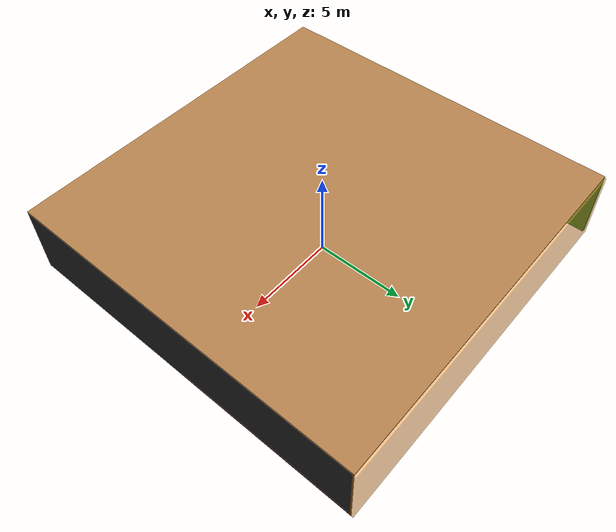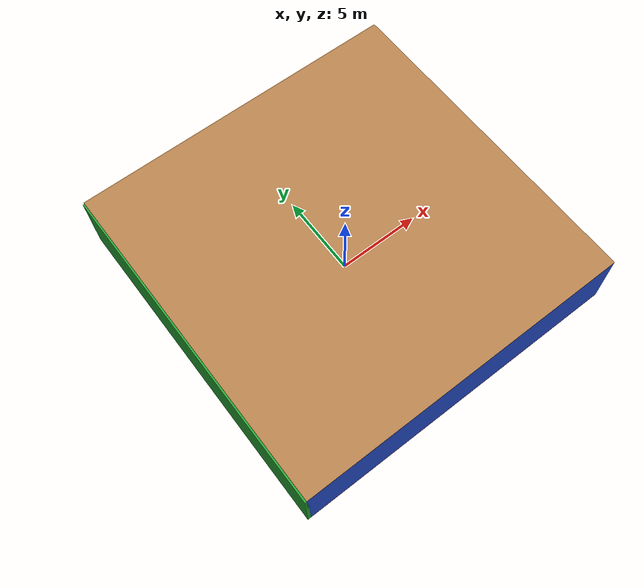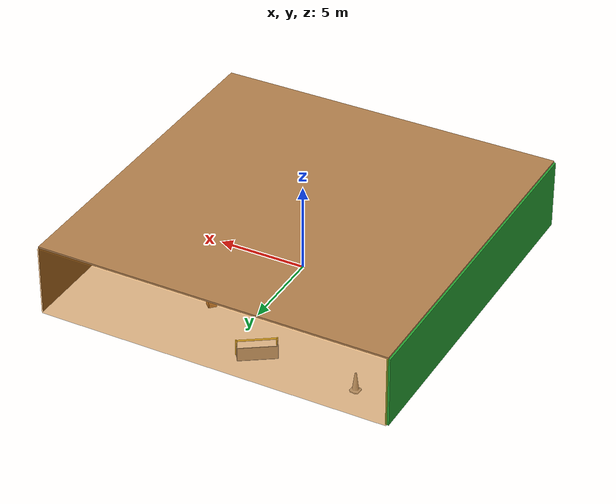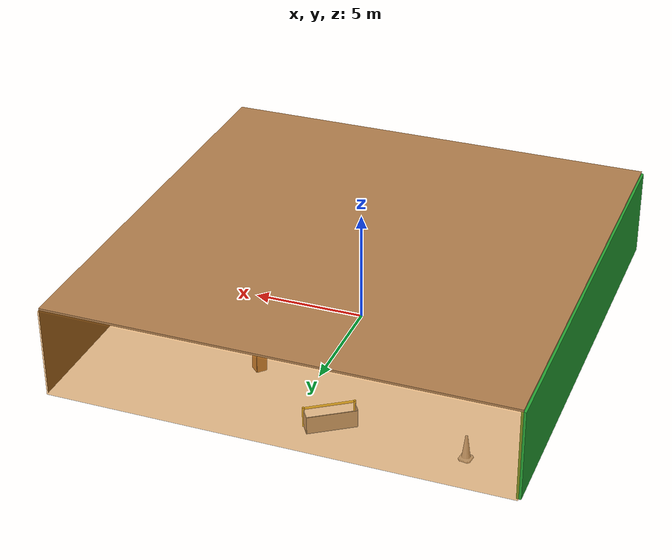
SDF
<sdf version="1.4">
 <world name="default">
  <physics type="ode">
   <max_step_size>0.001</max_step_size>
   <real_time_factor>1</real_time_factor>
   <real_time_update_rate>1000</real_time_update_rate>
   <gravity>0 0 -9.8</gravity>
  </physics>
  <scene><ambient>0.4 0.4 0.4 1</ambient><background>0.7 0.7 0.7 1</background><shadows>1</shadows></scene>
  <model name="Surrounding">
   <static>1</static>
   <link name="Ceiling">
    <collision name="Ceiling_Collision"><geometry><box><size>20 20 0.1</size></box></geometry></collision>
    <visual name="Ceiling_Visual">
     <geometry><box><size>20 20 0.1</size></box></geometry>
     <material>
      <script><uri>file://media/materials/scripts/gazebo.material</uri><name>Gazebo/WoodPallet</name></script>
     </material>
    </visual>
    <pose>0 0 4.05 0 0 0</pose>
   </link>
   <link name="Wall_South">
    <collision name="Wall_South_Collision">
     <geometry><box><size>20 0 4</size></box></geometry>
     <pose>0 0 2 0 -0 0</pose>
    </collision>
    <visual name="Wall_South_Visual">
     <pose>0 0 2 0 -0 0</pose>
     <geometry><box><size>20 0 4</size></box></geometry>
     <material>
      <script><uri>file://media/materials/scripts/gazebo.material</uri><name>Gazebo/Blue</name></script>
     </material>
    </visual>
    <velocity_decay><linear>0</linear><angular>0</angular></velocity_decay>
    <pose>0 -10 0 0 -0 0</pose>
   </link>
   <link name="Wall_East">
    <collision name="Wall_21_Collision">
     <geometry><box><size>20 0 4</size></box></geometry>
     <pose>0 0 2 0 -0 0</pose>
    </collision>
    <visual name="Wall_21_Visual">
     <pose>0 0 2 0 -0 0</pose>
     <geometry><box><size>20 0 4</size></box></geometry>
     <material>
      <script><uri>file://media/materials/scripts/gazebo.material</uri><name>Gazebo/Black</name></script>
     </material>
    </visual>
    <velocity_decay><linear>0</linear><angular>0</angular></velocity_decay>
    <pose>10 0 0 0 -0 1.5708</pose>
   </link>
   <link name="Wall_North">
    <collision name="Wall_22_Collision">
     <geometry><box><size>20 0.2 4</size></box></geometry>
     <pose>0 0 2 0 -0 0</pose>
    </collision>
    <visual name="Wall_22_Visual">
     <pose>0 0 2 0 -0 0</pose>
     <geometry><box><size>20 0.2 4</size></box></geometry>
     <material>
      <script>
       <uri>file://media/materials/scripts/gazebo.material</uri>
       <name>Gazebo/OrangeTransparent</name>
      </script>
     </material>
    </visual>
    <velocity_decay><linear>0</linear><angular>0</angular></velocity_decay>
    <pose>0 10 0 0 -0 0</pose>
   </link>
   <link name="Wall_West">
    <collision name="Wall_23_Collision">
     <geometry><box><size>20 0.2 4</size></box></geometry>
     <pose>0 0 2 0 -0 0</pose>
    </collision>
    <visual name="Wall_23_Visual">
     <pose>0 0 2 0 -0 0</pose>
     <geometry><box><size>20 0.2 4</size></box></geometry>
     <material>
      <script><uri>file://media/materials/scripts/gazebo.material</uri><name>Gazebo/GreenGlow</name></script>
     </material>
    </visual>
    <velocity_decay><linear>0</linear><angular>0</angular></velocity_decay>
    <pose>-10 0 0 0 0 -1.5708</pose>
   </link>
   <link name="Ground_link">
    <collision name="collision">
     <pose>0 0 .05 0 -0 0</pose>
     <geometry><box><size>20 20 0.1</size></box></geometry>
    </collision>
    <visual name="visual">
     <pose>0 0 .05 0 -0 0</pose>
     <geometry><box><size>20 20 0.1</size></box></geometry>
     <material>
      <script><uri>file://media/materials/scripts/gazebo.material</uri><name>Gazebo/RedTransparent</name></script>
     </material>
    </visual>
   </link>
   <static>1</static>
  </model>
  <spherical_coordinates>
   <surface_model>EARTH_WGS84</surface_model>
   <latitude_deg>0</latitude_deg>
   <longitude_deg>0</longitude_deg>
   <elevation>0</elevation>
   <heading_deg>0</heading_deg>
  </spherical_coordinates>
  <light name="lightball_0" type="diffuse">
   <diffuse>0.8 0.8 0.8 1</diffuse>
   <specular>0.2 0.2 0.2 1</specular>
   <attenuation>
    <range>100</range>
    <constant>0.7</constant>
    <linear>0.01</linear>
    <quadratic>0.001</quadratic>
   </attenuation>
   <direction>-0.5 0.1 -0.9</direction>
   <pose>-7.59857008033 -6.68813748623 1.70246725443 0 0 0</pose>
  </light>
  <light name="lightball_1" type="diffuse">
   <diffuse>0.8 0.8 0.8 1</diffuse>
   <specular>0.2 0.2 0.2 1</specular>
   <attenuation>
    <range>100</range>
    <constant>0.7</constant>
    <linear>0.01</linear>
    <quadratic>0.001</quadratic>
   </attenuation>
   <direction>-0.5 0.1 -0.9</direction>
   <pose>-9.3742381603 7.43391651903 1.06829821059 0 0 0</pose>
  </light>
  <light name="lightball_2" type="diffuse">
   <diffuse>0.8 0.8 0.8 1</diffuse>
   <specular>0.2 0.2 0.2 1</specular>
   <attenuation>
    <range>100</range>
    <constant>0.7</constant>
    <linear>0.01</linear>
    <quadratic>0.001</quadratic>
   </attenuation>
   <direction>-0.5 0.1 -0.9</direction>
   <pose>-4.22537814399 -9.28143282036 1.24354909616 0 0 0</pose>
  </light>
  <light name="lightball_3" type="diffuse">
   <diffuse>0.8 0.8 0.8 1</diffuse>
   <specular>0.2 0.2 0.2 1</specular>
   <attenuation>
    <range>100</range>
    <constant>0.7</constant>
    <linear>0.01</linear>
    <quadratic>0.001</quadratic>
   </attenuation>
   <direction>-0.5 0.1 -0.9</direction>
   <pose>0.187202762754 -2.7918411255 1.79184821581 0 0 0</pose>
  </light>
  <light name="lightball_4" type="diffuse">
   <diffuse>0.8 0.8 0.8 1</diffuse>
   <specular>0.2 0.2 0.2 1</specular>
   <attenuation>
    <range>100</range>
    <constant>0.7</constant>
    <linear>0.01</linear>
    <quadratic>0.001</quadratic>
   </attenuation>
   <direction>-0.5 0.1 -0.9</direction>
   <pose>3.51271221372 3.94642484645 2.99546296499 0 0 0</pose>
  </light>
  <light name="lightball_5" type="diffuse">
   <diffuse>0.8 0.8 0.8 1</diffuse>
   <specular>0.2 0.2 0.2 1</specular>
   <attenuation>
    <range>100</range>
    <constant>0.7</constant>
    <linear>0.01</linear>
    <quadratic>0.001</quadratic>
   </attenuation>
   <direction>-0.5 0.1 -0.9</direction>
   <pose>0.752224172694 -1.7652551748 2.64311174894 0 0 0</pose>
  </light>
  <light name="lightball_6" type="diffuse">
   <diffuse>0.8 0.8 0.8 1</diffuse>
   <specular>0.2 0.2 0.2 1</specular>
   <attenuation>
    <range>100</range>
    <constant>0.7</constant>
    <linear>0.01</linear>
    <quadratic>0.001</quadratic>
   </attenuation>
   <direction>-0.5 0.1 -0.9</direction>
   <pose>-2.70023174103 2.60497003231 2.03898714013 0 0 0</pose>
  </light>
  <light name="lightball_7" type="diffuse">
   <diffuse>0.8 0.8 0.8 1</diffuse>
   <specular>0.2 0.2 0.2 1</specular>
   <attenuation>
    <range>100</range>
    <constant>0.7</constant>
    <linear>0.01</linear>
    <quadratic>0.001</quadratic>
   </attenuation>
   <direction>-0.5 0.1 -0.9</direction>
   <pose>-8.82203290556 -1.33448894034 1.01702255379 0 0 0</pose>
  </light>
  <light name="lightball_8" type="diffuse">
   <diffuse>0.8 0.8 0.8 1</diffuse>
   <specular>0.2 0.2 0.2 1</specular>
   <attenuation>
    <range>100</range>
    <constant>0.7</constant>
    <linear>0.01</linear>
    <quadratic>0.001</quadratic>
   </attenuation>
   <direction>-0.5 0.1 -0.9</direction>
   <pose>3.46548300119 -8.01262585345 1.11718163938 0 0 0</pose>
  </light>
  <light name="lightball_9" type="diffuse">
   <diffuse>0.8 0.8 0.8 1</diffuse>
   <specular>0.2 0.2 0.2 1</specular>
   <attenuation>
    <range>100</range>
    <constant>0.7</constant>
    <linear>0.01</linear>
    <quadratic>0.001</quadratic>
   </attenuation>
   <direction>-0.5 0.1 -0.9</direction>
   <pose>1.80675238821 6.82439998699 3.435048197 0 0 0</pose>
  </light>
  <include>
   <uri>model://construction_cone</uri>
   <pose>-7.39558414795 8.29091987299 0 0 0 1.44524602801</pose>
  </include>
  <include>
   <uri>model://robocup_3Dsim_goal</uri>
   <pose>-4.87249741224 -5.52079313056 0 0 0 2.1226338239</pose>
  </include>
  <include>
   <uri>model://robocup_3Dsim_goal</uri>
   <pose>-1.56081428555 7.89405264144 0 0 0 2.16387043909</pose>
  </include>
  <include><uri>model://table</uri><pose>0.678028199038 -2.65753065049 0 0 0 1.78443609701</pose></include>
  <include><uri>model://cabinet</uri><pose>2.56004712177 5.32790854218 0 0 0 0.813235302143</pose></include>
  <include><uri>model://cabinet</uri><pose>3.58649772825 -0.694617933483 0 0 0 1.45975534144</pose></include>
 </world>
</sdf>

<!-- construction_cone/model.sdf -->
<sdf version="1.5">
  <model name="Construction Cone">
    <link name="link">
      <collision name="collision">
        <geometry>
          <mesh>
            <scale>10 10 10</scale>
            <uri>file://isr-testbed/construction_cone/meshes/construction_cone.dae</uri>
          </mesh>
        </geometry>
      </collision>
      <visual name="visual">
        <geometry>
          <mesh>
            <scale>10 10 10</scale>
            <uri>file://isr-testbed/construction_cone/meshes/construction_cone.dae</uri>
          </mesh>
        </geometry>
      </visual>
    </link>
  </model>
</sdf>

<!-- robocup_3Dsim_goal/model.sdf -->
<sdf version="1.5">
  <model name="robocup_3d_goal">
    <static>true</static>
    <link name="left_post">
      <pose>0 1.05 0.45 0 0 0</pose>
      <collision name="collision">
        <geometry>
          <cylinder>
            <radius>0.05</radius>
            <length>0.9</length>
          </cylinder>
        </geometry>
      </collision>
      <visual name="visual">
        <geometry>
          <cylinder>
            <radius>0.05</radius>
            <length>0.9</length>
          </cylinder>
        </geometry>
        <material>
          <script>
            <uri>file://media/materials/scripts/gazebo.material</uri>
            <name>Gazebo/ZincYellow</name>
          </script>
        </material>
      </visual>
    </link>
    <link name="left_support_horiz_lower">
      <pose>0.30 1.05 0.01 0 0 0</pose>
      <collision name="collision">
        <geometry>
          <box>
            <size>0.50 0.02 0.02</size>
          </box>
        </geometry>
      </collision>
      <visual name="visual">
        <geometry>
          <box>
            <size>0.50 0.02 0.02</size>
          </box>
        </geometry>
        <material>
          <script>
            <uri>file://media/materials/scripts/gazebo.material</uri>
            <name>Gazebo/White</name>
          </script>
        </material>
      </visual>
    </link>
    <link name="left_support_horiz_upper">
      <pose>0.30 1.05 0.79 0 0 0</pose>
      <collision name="collision">
        <geometry>
          <box>
            <size>0.50 0.02 0.02</size>
          </box>
        </geometry>
      </collision>
      <visual name="visual">
        <geometry>
          <box>
            <size>0.50 0.02 0.02</size>
          </box>
        </geometry>
        <material>
          <script>
            <uri>file://media/materials/scripts/gazebo.material</uri>
            <name>Gazebo/White</name>
          </script>
        </material>
      </visual>
    </link>
    <link name="left_support_vertical">
      <pose>0.56 1.05 0.4 0 1.5708 0</pose>
      <collision name="collision">
        <geometry>
          <box>
            <size>0.80 0.02 0.02</size>
          </box>
        </geometry>
      </collision>
      <visual name="visual">
        <geometry>
          <box>
            <size>0.80 0.02 0.02</size>
          </box>
        </geometry>
        <material>
          <script>
            <uri>file://media/materials/scripts/gazebo.material</uri>
            <name>Gazebo/White</name>
          </script>
        </material>
      </visual>
    </link>
    <link name="right_support_horiz_lower">
      <pose>0.30 -1.05 0.01 0 0 0</pose>
      <collision name="collision">
        <geometry>
          <box>
            <size>0.50 0.02 0.02</size>
          </box>
        </geometry>
      </collision>
      <visual name="visual">
        <geometry>
          <box>
            <size>0.50 0.02 0.02</size>
          </box>
        </geometry>
        <material>
          <script>
            <uri>file://media/materials/scripts/gazebo.material</uri>
            <name>Gazebo/White</name>
          </script>
        </material>
      </visual>
    </link>
    <link name="right_support_horiz_upper">
      <pose>0.30 -1.05 0.79 0 0 0</pose>
      <collision name="collision">
        <geometry>
          <box>
            <size>0.50 0.02 0.02</size>
          </box>
        </geometry>
      </collision>
      <visual name="visual">
        <geometry>
          <box>
            <size>0.50 0.02 0.02</size>
          </box>
        </geometry>
        <material>
          <script>
            <uri>file://media/materials/scripts/gazebo.material</uri>
            <name>Gazebo/White</name>
          </script>
        </material>
      </visual>
    </link>
    <link name="right_support_vertical">
      <pose>0.56 -1.05 0.4 0 1.5708 0</pose>
      <collision name="collision">
        <geometry>
          <box>
            <size>0.80 0.02 0.02</size>
          </box>
        </geometry>
      </collision>
      <visual name="visual">
        <geometry>
          <box>
            <size>0.80 0.02 0.02</size>
          </box>
        </geometry>
        <material>
          <script>
            <uri>file://media/materials/scripts/gazebo.material</uri>
            <name>Gazebo/White</name>
          </script>
        </material>
      </visual>
    </link>
    <link name="center_support_horiz_lower">
      <pose>0.56 0 0.01 0 1.5708 0</pose>
      <collision name="collision">
        <geometry>
          <box>
            <size>0.02 2.08 0.02</size>
          </box>
        </geometry>
      </collision>
      <visual name="visual">
        <geometry>
          <box>
            <size>0.02 2.08 0.02</size>
          </box>
        </geometry>
        <material>
          <script>
            <uri>file://media/materials/scripts/gazebo.material</uri>
            <name>Gazebo/White</name>
          </script>
        </material>
      </visual>
    </link>
    <link name="center_support_horiz_upper">
      <pose>0.56 0 0.79 0 1.5708 0</pose>
      <collision name="collision">
        <geometry>
          <box>
            <size>0.02 2.08 0.02</size>
          </box>
        </geometry>
      </collision>
      <visual name="visual">
        <geometry>
          <box>
            <size>0.02 2.08 0.02</size>
          </box>
        </geometry>
        <material>
          <script>
            <uri>file://media/materials/scripts/gazebo.material</uri>
            <name>Gazebo/White</name>
          </script>
        </material>
      </visual>
    </link>
    <link name="right_post">
      <pose>0 -1.05 0.45 0 0 0</pose>
      <collision name="collision">
        <geometry>
          <cylinder>
            <radius>0.05</radius>
            <length>0.9</length>
          </cylinder>
        </geometry>
      </collision>
      <visual name="visual">
        <geometry>
          <cylinder>
            <radius>0.05</radius>
            <length>0.9</length>
          </cylinder>
        </geometry>
        <material>
          <script>
            <uri>file://media/materials/scripts/gazebo.material</uri>
            <name>Gazebo/ZincYellow</name>
          </script>
        </material>
      </visual>
    </link>
    <link name="crossbar">
      <pose>0 0 0.85 1.57 1.57 0</pose>
      <collision name="collision">
        <geometry>
          <cylinder>
            <radius>0.05</radius>
            <length>2.0</length>
          </cylinder>
        </geometry>
      </collision>
      <visual name="visual">
        <geometry>
          <cylinder>
            <radius>0.05</radius>
            <length>2.0</length>
          </cylinder>
        </geometry>
        <material>
          <script>
            <uri>file://media/materials/scripts/gazebo.material</uri>
            <name>Gazebo/ZincYellow</name>
          </script>
        </material>
      </visual>
    </link>
    <link name="center_net">
      <pose>0.56 0 0.40 0 0 0</pose>
      <collision name="collision">
        <geometry>
          <box>
            <size>0.01 2.1 0.80</size>
          </box>
        </geometry>
      </collision>
      <visual name="visual">
        <geometry>
          <box>
            <size>0.01 2.1 0.80</size>
          </box>
        </geometry>
        <material>
          <script>
            <uri>model://../model_source/models/robocup09_spl_field/materials/scripts/</uri>
            <uri>model://../model_source/models/robocup09_spl_field/materials/textures/</uri>
            <name>RoboCup/Net</name>
          </script>
        </material>
      </visual>
    </link>
    <link name="left_net">
      <pose>0.30 1.05 0.40 0 0 0</pose>
      <collision name="collision">
        <geometry>
          <box>
            <size>0.50 0.01 0.76</size>
          </box>
        </geometry>
      </collision>
      <visual name="visual">
        <geometry>
          <box>
            <size>0.50 0.01 0.76</size>
          </box>
        </geometry>
        <material>
          <script>
            <uri>model://../model_source/models/robocup09_spl_field/materials/scripts/</uri>
            <uri>model://../model_source/models/robocup09_spl_field/materials/textures/</uri>
            <name>RoboCup/Net</name>
          </script>
        </material>
      </visual>
    </link>
    <link name="right_net">
      <pose>0.30 -1.05 0.40 0 0 0</pose>
      <collision name="collision">
        <geometry>
          <box>
            <size>0.50 0.01 0.76</size>
          </box>
        </geometry>
      </collision>
      <visual name="visual">
        <geometry>
          <box>
            <size>0.50 0.01 0.76</size>
          </box>
        </geometry>
        <material>
          <script>
            <uri>model://../model_source/models/robocup09_spl_field/materials/scripts/</uri>
            <uri>model://../model_source/models/robocup09_spl_field/materials/textures/</uri>
            <name>RoboCup/Net</name>
          </script>
        </material>
      </visual>
    </link>
  </model>
</sdf>

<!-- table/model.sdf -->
<sdf version="1.5">
  <model name="table">
    <static>true</static>
    <link name="link">
      <collision name="surface">
        <pose>0 0 1.0 0 0 0</pose>
        <geometry>
          <box>
            <size>1.5 0.8 0.03</size>
          </box>
        </geometry>
        <surface>
          <friction>
            <ode>
              <mu>0.6</mu>
              <mu2>0.6</mu2>
            </ode>
          </friction>
        </surface>
      </collision>
      <visual name="visual1">
        <pose>0 0 1.0 0 0 0</pose>
        <geometry>
          <box>
            <size>1.5 0.8 0.03</size>
          </box>
        </geometry>
        <material>
          <script>
            <uri>model://media/materials/scripts/gazebo.material</uri>
            <name>Gazebo/Wood</name>
          </script>
        </material>
      </visual>
      <collision name="front_left_leg">
        <pose>0.68 0.38 0.5 0 0 0</pose>
        <geometry>
          <cylinder>
            <radius>0.02</radius>
            <length>1.0</length>
          </cylinder>
        </geometry>
      </collision>
      <visual name="front_left_leg">
        <pose>0.68 0.38 0.5 0 0 0</pose>
        <geometry>
          <cylinder>
            <radius>0.02</radius>
            <length>1.0</length>
          </cylinder>
        </geometry>
        <material>
          <script>
            <uri>model://media/materials/scripts/gazebo.material</uri>
            <name>Gazebo/Grey</name>
          </script>
        </material>
      </visual>
      <collision name="front_right_leg">
        <pose>0.68 -0.38 0.5 0 0 0</pose>
        <geometry>
          <cylinder>
            <radius>0.02</radius>
            <length>1.0</length>
          </cylinder>
        </geometry>
      </collision>
      <visual name="front_right_leg">
        <pose>0.68 -0.38 0.5 0 0 0</pose>
        <geometry>
          <cylinder>
            <radius>0.02</radius>
            <length>1.0</length>
          </cylinder>
        </geometry>
        <material>
          <script>
            <uri>model://media/materials/scripts/gazebo.material</uri>
            <name>Gazebo/Grey</name>
          </script>
        </material>
      </visual>
      <collision name="back_right_leg">
        <pose>-0.68 -0.38 0.5 0 0 0</pose>
        <geometry>
          <cylinder>
            <radius>0.02</radius>
            <length>1.0</length>
          </cylinder>
        </geometry>
      </collision>
      <visual name="back_right_leg">
        <pose>-0.68 -0.38 0.5 0 0 0</pose>
        <geometry>
          <cylinder>
            <radius>0.02</radius>
            <length>1.0</length>
          </cylinder>
        </geometry>
        <material>
          <script>
            <uri>model://media/materials/scripts/gazebo.material</uri>
            <name>Gazebo/Grey</name>
          </script>
        </material>
      </visual>
      <collision name="back_left_leg">
        <pose>-0.68 0.38 0.5 0 0 0</pose>
        <geometry>
          <cylinder>
            <radius>0.02</radius>
            <length>1.0</length>
          </cylinder>
        </geometry>
      </collision>
      <visual name="back_left_leg">
        <pose>-0.68 0.38 0.5 0 0 0</pose>
        <geometry>
          <cylinder>
            <radius>0.02</radius>
            <length>1.0</length>
          </cylinder>
        </geometry>
        <material>
          <script>
            <uri>model://media/materials/scripts/gazebo.material</uri>
            <name>Gazebo/Grey</name>
          </script>
        </material>
      </visual>
    </link>
  </model>
</sdf>

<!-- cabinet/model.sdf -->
<sdf version="1.5">
  <model name="cabinet">
    <static>true</static>
    <link name="cabinet_bottom_plate">
      <inertial>
        <pose>0 0 -1 0 0 0</pose>
        <inertia>
          <ixx>2.050000</ixx>
          <ixy>0</ixy>
          <ixz>0</ixz>
          <iyy>2.050000</iyy>
          <iyz>0</iyz>
          <izz>2.050000</izz>
        </inertia>
        <mass>25.000000</mass>
      </inertial>
      <collision name="cabinet_bottom_plate_geom">
        <pose>0 0 0.010000 0 0 0</pose>
        <geometry>
          <box>
            <size>0.450000 0.450000 0.020000</size>
          </box>
        </geometry>
      </collision>
      <visual name="cabinet_bottom_plate_geom_visual">
        <pose>0 0 0.010000 0 0 0</pose>
        <geometry>
          <box>
            <size>0.450000 0.450000 0.020000</size>
          </box>
        </geometry>
        <material>
          <script>
            <uri>model://media/materials/scripts/gazebo.material</uri>
            <name>Gazebo/Wood</name>
          </script>
        </material>
      </visual>
      <collision name="cabinet_bottom_plate_geom_cabinet_back_plate">
        <pose>0.235000 0 0.510000 0 0 0</pose>
        <geometry>
          <box>
            <size>0.020000 0.450000 1.020000</size>
          </box>
        </geometry>
      </collision>
      <visual name="cabinet_bottom_plate_geom_cabinet_back_plate_visual">
        <pose>0.235000 0 0.510000 0 0 0</pose>
        <geometry>
          <box>
            <size>0.020000 0.450000 1.020000</size>
          </box>
        </geometry>
        <material>
          <script>
            <uri>model://media/materials/scripts/gazebo.material</uri>
            <name>Gazebo/Wood</name>
          </script>
        </material>
      </visual>
      <collision name="cabinet_bottom_plate_geom_cabinet_left_plate">
        <pose>0 0.235000 0.510000 0 0 0</pose>
        <geometry>
          <box>
            <size>0.450000 0.020000 1.020000</size>
          </box>
        </geometry>
      </collision>
      <visual name="cabinet_bottom_plate_geom_cabinet_left_plate_visual">
        <pose>0 0.235000 0.510000 0 0 0</pose>
        <geometry>
          <box>
            <size>0.450000 0.020000 1.020000</size>
          </box>
        </geometry>
        <material>
          <script>
            <uri>model://media/materials/scripts/gazebo.material</uri>
            <name>Gazebo/Wood</name>
          </script>
        </material>
      </visual>
      <collision name="cabinet_bottom_plate_geom_cabinet_middle_plate">
        <pose>0 0 0.510000 0 0 0</pose>
        <geometry>
          <box>
            <size>0.450000 0.450000 0.020000</size>
          </box>
        </geometry>
      </collision>
      <visual name="cabinet_bottom_plate_geom_cabinet_middle_plate_visual">
        <pose>0 0 0.510000 0 0 0</pose>
        <geometry>
          <box>
            <size>0.450000 0.450000 0.020000</size>
          </box>
        </geometry>
        <material>
          <script>
            <uri>model://media/materials/scripts/gazebo.material</uri>
            <name>Gazebo/Wood</name>
          </script>
        </material>
      </visual>
      <collision name="cabinet_bottom_plate_geom_cabinet_right_plate">
        <pose>0 -0.235000 0.510000 0 0 0</pose>
        <geometry>
          <box>
            <size>0.450000 0.020000 1.020000</size>
          </box>
        </geometry>
      </collision>
      <visual name="cabinet_bottom_plate_geom_cabinet_right_plate_visual">
        <pose>0 -0.235000 0.510000 0 0 0</pose>
        <geometry>
          <box>
            <size>0.450000 0.020000 1.020000</size>
          </box>
        </geometry>
        <material>
          <script>
            <uri>model://media/materials/scripts/gazebo.material</uri>
            <name>Gazebo/Wood</name>
          </script>
        </material>
      </visual>
      <collision name="cabinet_bottom_plate_geom_cabinet_top_plate">
        <pose>0 0 1.010000 0 0 0</pose>
        <geometry>
          <box>
            <size>0.450000 0.450000 0.020000</size>
          </box>
        </geometry>
      </collision>
      <visual name="cabinet_bottom_plate_geom_cabinet_top_plate_visual">
        <pose>0 0 1.010000 0 0 0</pose>
        <geometry>
          <box>
            <size>0.450000 0.450000 0.020000</size>
          </box>
        </geometry>
        <material>
          <script>
            <uri>model://media/materials/scripts/gazebo.material</uri>
            <name>Gazebo/Wood</name>
          </script>
        </material>
      </visual>
    </link>
  </model>
</sdf>
